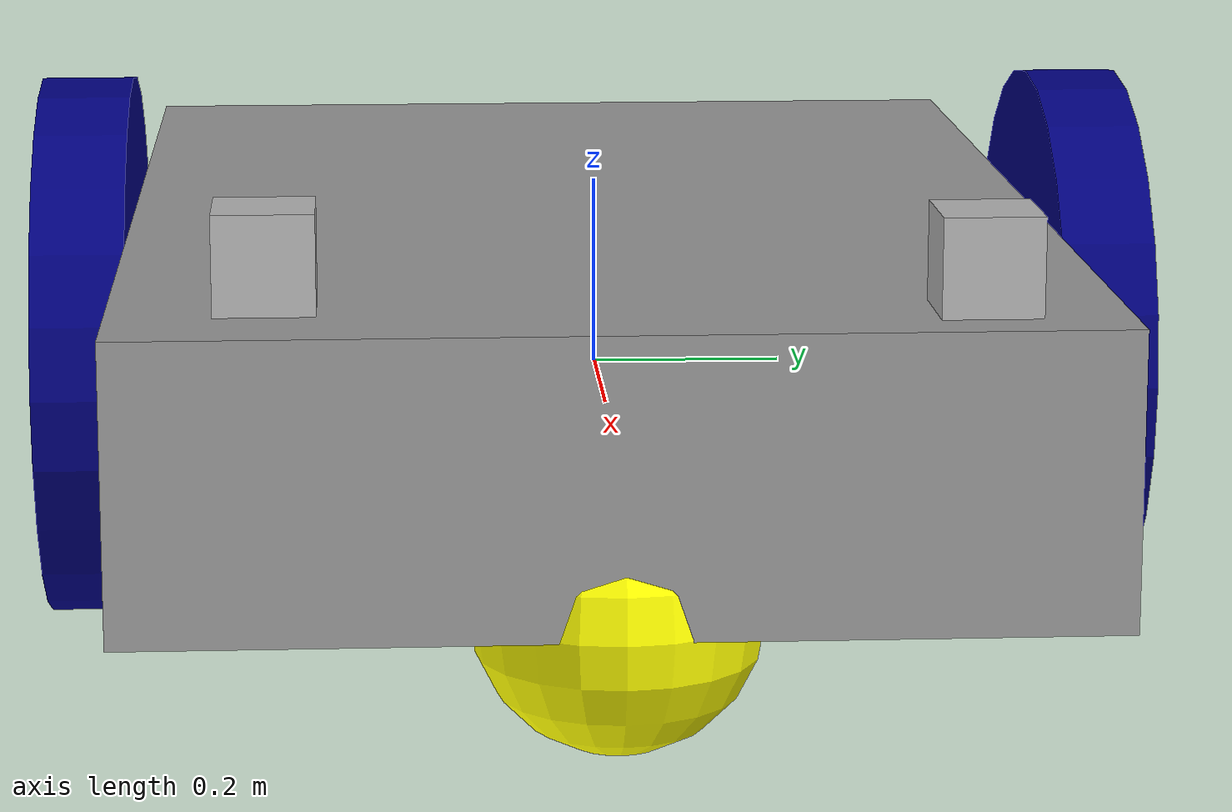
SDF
<?xml version='1.0'?>
<sdf version='1.7'>
  <model name='MYRobo'>
    <link name='link_3'>
      <inertial>
        <mass>0.442122</mass>
        <inertia>
          <ixx>0.0402302</ixx>
          <ixy>0</ixy>
          <ixz>0</ixz>
          <iyy>0.0817796</iyy>
          <iyz>0</iyz>
          <izz>0.115236</izz>
        </inertia>
        <pose>0 0 0 0 -0 0</pose>
      </inertial>
      <pose>-0.181573 -0.002286 -0.00731 0 -0 0</pose>
      <gravity>1</gravity>
      <self_collide>0</self_collide>
      <kinematic>0</kinematic>
      <enable_wind>0</enable_wind>
      <visual name='visual'>
        <pose>0 0 0 0 -0 0</pose>
        <geometry>
          <box>
            <size>1.45867 1 0.303184</size>
          </box>
        </geometry>
        <material>
          <lighting>1</lighting>
          <script>
            <uri>file://media/materials/scripts/gazebo.material</uri>
            <name>Gazebo/Grey</name>
          </script>
          <shader type='pixel'>
            <normal_map>__default__</normal_map>
          </shader>
          <ambient>0.3 0.3 0.3 1</ambient>
          <diffuse>0.7 0.7 0.7 1</diffuse>
          <specular>0.01 0.01 0.01 1</specular>
          <emissive>0 0 0 1</emissive>
        </material>
        <transparency>0</transparency>
        <cast_shadows>1</cast_shadows>
      </visual>
      <collision name='collision'>
        <laser_retro>0</laser_retro>
        <max_contacts>10</max_contacts>
        <pose>0 0 0 0 -0 0</pose>
        <geometry>
          <box>
            <size>1.45867 1 0.303184</size>
          </box>
        </geometry>
        <surface>
          <friction>
            <ode>
              <mu>1</mu>
              <mu2>1</mu2>
              <fdir1>0 0 0</fdir1>
              <slip1>0</slip1>
              <slip2>0</slip2>
            </ode>
            <torsional>
              <coefficient>1</coefficient>
              <patch_radius>0</patch_radius>
              <surface_radius>0</surface_radius>
              <use_patch_radius>1</use_patch_radius>
              <ode>
                <slip>0</slip>
              </ode>
            </torsional>
          </friction>
          <bounce>
            <restitution_coefficient>0</restitution_coefficient>
            <threshold>1e+06</threshold>
          </bounce>
          <contact>
            <collide_without_contact>0</collide_without_contact>
            <collide_without_contact_bitmask>1</collide_without_contact_bitmask>
            <collide_bitmask>1</collide_bitmask>
            <ode>
              <soft_cfm>0</soft_cfm>
              <soft_erp>0.2</soft_erp>
              <kp>1e+13</kp>
              <kd>1</kd>
              <max_vel>0.01</max_vel>
              <min_depth>0</min_depth>
            </ode>
            <bullet>
              <split_impulse>1</split_impulse>
              <split_impulse_penetration_threshold>-0.01</split_impulse_penetration_threshold>
              <soft_cfm>0</soft_cfm>
              <soft_erp>0.2</soft_erp>
              <kp>1e+13</kp>
              <kd>1</kd>
            </bullet>
          </contact>
        </surface>
      </collision>
    </link>
    <link name='link_4'>
      <inertial>
        <mass>1</mass>
        <inertia>
          <ixx>0.145833</ixx>
          <ixy>0</ixy>
          <ixz>0</ixz>
          <iyy>0.145833</iyy>
          <iyz>0</iyz>
          <izz>0.125</izz>
        </inertia>
        <pose>0 0 0 0 -0 0</pose>
      </inertial>
      <pose>-0.181573 -0.552315 -0.012462 1.5707 -0 0</pose>
      <gravity>1</gravity>
      <self_collide>0</self_collide>
      <kinematic>0</kinematic>
      <enable_wind>1</enable_wind>
      <visual name='visual'>
        <pose>0 0 0 0 -0 0</pose>
        <geometry>
          <cylinder>
            <radius>0.3</radius>
            <length>0.1</length>
          </cylinder>
        </geometry>
        <material>
          <lighting>1</lighting>
          <script>
            <uri>file://media/materials/scripts/gazebo.material</uri>
            <name>Gazebo/Grey</name>
          </script>
          <shader type='pixel'>
            <normal_map>__default__</normal_map>
          </shader>
          <ambient>0 0 0.498 1</ambient>
          <diffuse>0.7 0.7 0.7 1</diffuse>
          <specular>0.01 0.01 0.01 1</specular>
          <emissive>0 0 0 1</emissive>
        </material>
        <transparency>0</transparency>
        <cast_shadows>1</cast_shadows>
      </visual>
      <collision name='collision'>
        <laser_retro>0</laser_retro>
        <max_contacts>10</max_contacts>
        <pose>0 0 0 0 -0 0</pose>
        <geometry>
          <cylinder>
            <radius>0.3</radius>
            <length>0.1</length>
          </cylinder>
        </geometry>
        <surface>
          <friction>
            <ode>
              <mu>1</mu>
              <mu2>1</mu2>
              <fdir1>0 0 0</fdir1>
              <slip1>0</slip1>
              <slip2>0</slip2>
            </ode>
            <torsional>
              <coefficient>1</coefficient>
              <patch_radius>0</patch_radius>
              <surface_radius>0</surface_radius>
              <use_patch_radius>1</use_patch_radius>
              <ode>
                <slip>0</slip>
              </ode>
            </torsional>
          </friction>
          <bounce>
            <restitution_coefficient>0</restitution_coefficient>
            <threshold>1e+06</threshold>
          </bounce>
          <contact>
            <collide_without_contact>0</collide_without_contact>
            <collide_without_contact_bitmask>1</collide_without_contact_bitmask>
            <collide_bitmask>1</collide_bitmask>
            <ode>
              <soft_cfm>0</soft_cfm>
              <soft_erp>0.2</soft_erp>
              <kp>1e+13</kp>
              <kd>1</kd>
              <max_vel>0.01</max_vel>
              <min_depth>0</min_depth>
            </ode>
            <bullet>
              <split_impulse>1</split_impulse>
              <split_impulse_penetration_threshold>-0.01</split_impulse_penetration_threshold>
              <soft_cfm>0</soft_cfm>
              <soft_erp>0.2</soft_erp>
              <kp>1e+13</kp>
              <kd>1</kd>
            </bullet>
          </contact>
        </surface>
      </collision>
    </link>
    <link name='link_4_clone'>
      <inertial>
        <mass>1</mass>
        <inertia>
          <ixx>0.145833</ixx>
          <ixy>0</ixy>
          <ixz>0</ixz>
          <iyy>0.145833</iyy>
          <iyz>0</iyz>
          <izz>0.125</izz>
        </inertia>
        <pose>0 0 0 0 -0 0</pose>
      </inertial>
      <pose>-0.181573 0.547743 -0.012462 1.5707 -0 0</pose>
      <gravity>1</gravity>
      <self_collide>0</self_collide>
      <kinematic>0</kinematic>
      <enable_wind>1</enable_wind>
      <visual name='visual'>
        <pose>0 0 0 0 -0 0</pose>
        <geometry>
          <cylinder>
            <radius>0.3</radius>
            <length>0.1</length>
          </cylinder>
        </geometry>
        <material>
          <lighting>1</lighting>
          <script>
            <uri>file://media/materials/scripts/gazebo.material</uri>
            <name>Gazebo/Grey</name>
          </script>
          <shader type='pixel'>
            <normal_map>__default__</normal_map>
          </shader>
          <ambient>0 0 0.498 1</ambient>
          <diffuse>0.7 0.7 0.7 1</diffuse>
          <specular>0.01 0.01 0.01 1</specular>
          <emissive>0 0 0 1</emissive>
        </material>
        <transparency>0</transparency>
        <cast_shadows>1</cast_shadows>
      </visual>
      <collision name='collision'>
        <laser_retro>0</laser_retro>
        <max_contacts>10</max_contacts>
        <pose>0 0 0 0 -0 0</pose>
        <geometry>
          <cylinder>
            <radius>0.3</radius>
            <length>0.1</length>
          </cylinder>
        </geometry>
        <surface>
          <friction>
            <ode>
              <mu>1</mu>
              <mu2>1</mu2>
              <fdir1>0 0 0</fdir1>
              <slip1>0</slip1>
              <slip2>0</slip2>
            </ode>
            <torsional>
              <coefficient>1</coefficient>
              <patch_radius>0</patch_radius>
              <surface_radius>0</surface_radius>
              <use_patch_radius>1</use_patch_radius>
              <ode>
                <slip>0</slip>
              </ode>
            </torsional>
          </friction>
          <bounce>
            <restitution_coefficient>0</restitution_coefficient>
            <threshold>1e+06</threshold>
          </bounce>
          <contact>
            <collide_without_contact>0</collide_without_contact>
            <collide_without_contact_bitmask>1</collide_without_contact_bitmask>
            <collide_bitmask>1</collide_bitmask>
            <ode>
              <soft_cfm>0</soft_cfm>
              <soft_erp>0.2</soft_erp>
              <kp>1e+13</kp>
              <kd>1</kd>
              <max_vel>0.01</max_vel>
              <min_depth>0</min_depth>
            </ode>
            <bullet>
              <split_impulse>1</split_impulse>
              <split_impulse_penetration_threshold>-0.01</split_impulse_penetration_threshold>
              <soft_cfm>0</soft_cfm>
              <soft_erp>0.2</soft_erp>
              <kp>1e+13</kp>
              <kd>1</kd>
            </bullet>
          </contact>
        </surface>
      </collision>
    </link>
    <link name='link_5'>
      <inertial>
        <mass>1</mass>
        <inertia>
          <ixx>0.1</ixx>
          <ixy>0</ixy>
          <ixz>0</ixz>
          <iyy>0.1</iyy>
          <iyz>0</iyz>
          <izz>0.1</izz>
        </inertia>
        <pose>0 0 0 0 -0 0</pose>
      </inertial>
      <pose>0.414558 -0.000809 -0.157774 0 -0 0</pose>
      <gravity>1</gravity>
      <self_collide>0</self_collide>
      <kinematic>0</kinematic>
      <enable_wind>0</enable_wind>
      <visual name='visual'>
        <pose>0 0 0 0 -0 0</pose>
        <geometry>
          <sphere>
            <radius>0.15</radius>
          </sphere>
        </geometry>
        <material>
          <lighting>1</lighting>
          <script>
            <uri>file://media/materials/scripts/gazebo.material</uri>
            <name>Gazebo/Grey</name>
          </script>
          <shader type='pixel'>
            <normal_map>__default__</normal_map>
          </shader>
          <ambient>1 1 0 1</ambient>
          <diffuse>0.7 0.7 0.7 1</diffuse>
          <specular>0.01 0.01 0.01 1</specular>
          <emissive>0 0 0 1</emissive>
        </material>
        <transparency>0</transparency>
        <cast_shadows>1</cast_shadows>
      </visual>
      <collision name='collision'>
        <laser_retro>0</laser_retro>
        <max_contacts>10</max_contacts>
        <pose>0 0 0 0 -0 0</pose>
        <geometry>
          <sphere>
            <radius>0.15</radius>
          </sphere>
        </geometry>
        <surface>
          <friction>
            <ode>
              <mu>1</mu>
              <mu2>1</mu2>
              <fdir1>0 0 0</fdir1>
              <slip1>0</slip1>
              <slip2>0</slip2>
            </ode>
            <torsional>
              <coefficient>1</coefficient>
              <patch_radius>0</patch_radius>
              <surface_radius>0</surface_radius>
              <use_patch_radius>1</use_patch_radius>
              <ode>
                <slip>0</slip>
              </ode>
            </torsional>
          </friction>
          <bounce>
            <restitution_coefficient>0</restitution_coefficient>
            <threshold>1e+06</threshold>
          </bounce>
          <contact>
            <collide_without_contact>0</collide_without_contact>
            <collide_without_contact_bitmask>1</collide_without_contact_bitmask>
            <collide_bitmask>1</collide_bitmask>
            <ode>
              <soft_cfm>0</soft_cfm>
              <soft_erp>0.2</soft_erp>
              <kp>1e+13</kp>
              <kd>1</kd>
              <max_vel>0.01</max_vel>
              <min_depth>0</min_depth>
            </ode>
            <bullet>
              <split_impulse>1</split_impulse>
              <split_impulse_penetration_threshold>-0.01</split_impulse_penetration_threshold>
              <soft_cfm>0</soft_cfm>
              <soft_erp>0.2</soft_erp>
              <kp>1e+13</kp>
              <kd>1</kd>
            </bullet>
          </contact>
        </surface>
      </collision>
    </link>
    <link name='link_5_clone'>
      <inertial>
        <mass>1</mass>
        <inertia>
          <ixx>0.1</ixx>
          <ixy>0</ixy>
          <ixz>0</ixz>
          <iyy>0.1</iyy>
          <iyz>0</iyz>
          <izz>0.1</izz>
        </inertia>
        <pose>0 0 0 0 -0 0</pose>
      </inertial>
      <pose>-0.751134 -0.002286 -0.157774 0 -0 0</pose>
      <gravity>1</gravity>
      <self_collide>0</self_collide>
      <kinematic>0</kinematic>
      <enable_wind>0</enable_wind>
      <visual name='visual'>
        <pose>0 0 0 0 -0 0</pose>
        <geometry>
          <sphere>
            <radius>0.15</radius>
          </sphere>
        </geometry>
        <material>
          <lighting>1</lighting>
          <script>
            <uri>file://media/materials/scripts/gazebo.material</uri>
            <name>Gazebo/Grey</name>
          </script>
          <shader type='pixel'>
            <normal_map>__default__</normal_map>
          </shader>
          <ambient>1 1 0 1</ambient>
          <diffuse>0.7 0.7 0.7 1</diffuse>
          <specular>0.01 0.01 0.01 1</specular>
          <emissive>0 0 0 1</emissive>
        </material>
        <transparency>0</transparency>
        <cast_shadows>1</cast_shadows>
      </visual>
      <collision name='collision'>
        <laser_retro>0</laser_retro>
        <max_contacts>10</max_contacts>
        <pose>0 0 0 0 -0 0</pose>
        <geometry>
          <sphere>
            <radius>0.15</radius>
          </sphere>
        </geometry>
        <surface>
          <friction>
            <ode>
              <mu>1</mu>
              <mu2>1</mu2>
              <fdir1>0 0 0</fdir1>
              <slip1>0</slip1>
              <slip2>0</slip2>
            </ode>
            <torsional>
              <coefficient>1</coefficient>
              <patch_radius>0</patch_radius>
              <surface_radius>0</surface_radius>
              <use_patch_radius>1</use_patch_radius>
              <ode>
                <slip>0</slip>
              </ode>
            </torsional>
          </friction>
          <bounce>
            <restitution_coefficient>0</restitution_coefficient>
            <threshold>1e+06</threshold>
          </bounce>
          <contact>
            <collide_without_contact>0</collide_without_contact>
            <collide_without_contact_bitmask>1</collide_without_contact_bitmask>
            <collide_bitmask>1</collide_bitmask>
            <ode>
              <soft_cfm>0</soft_cfm>
              <soft_erp>0.2</soft_erp>
              <kp>1e+13</kp>
              <kd>1</kd>
              <max_vel>0.01</max_vel>
              <min_depth>0</min_depth>
            </ode>
            <bullet>
              <split_impulse>1</split_impulse>
              <split_impulse_penetration_threshold>-0.01</split_impulse_penetration_threshold>
              <soft_cfm>0</soft_cfm>
              <soft_erp>0.2</soft_erp>
              <kp>1e+13</kp>
              <kd>1</kd>
            </bullet>
          </contact>
        </surface>
      </collision>
    </link>
    <model name='camera'>
      <pose>0.431324 -0.345601 0.201982 0 -0 0</pose>
      <link name='link'>
        <inertial>
          <mass>0.1</mass>
          <inertia>
            <ixx>0.000166667</ixx>
            <iyy>0.000166667</iyy>
            <izz>0.000166667</izz>
            <ixy>0</ixy>
            <ixz>0</ixz>
            <iyz>0</iyz>
          </inertia>
        </inertial>
        <collision name='collision'>
          <geometry>
            <box>
              <size>0.1 0.1 0.1</size>
            </box>
          </geometry>
        </collision>
        <visual name='visual'>
          <geometry>
            <box>
              <size>0.1 0.1 0.1</size>
            </box>
          </geometry>
        </visual>
        <sensor name='camera' type='camera'>
          <camera>
            <horizontal_fov>1.047</horizontal_fov>
            <image>
              <width>320</width>
              <height>240</height>
            </image>
            <clip>
              <near>0.1</near>
              <far>100</far>
            </clip>
          </camera>
          <always_on>1</always_on>
          <update_rate>30</update_rate>
          <visualize>1</visualize>
        </sensor>
      </link>
    </model>
    <model name='depth_camera'>
      <link name='link'>
        <pose>0 0 0.05 0 -0 0</pose>
        <inertial>
          <mass>0.1</mass>
          <inertia>
            <ixx>0.000166667</ixx>
            <iyy>0.000166667</iyy>
            <izz>0.000166667</izz>
            <ixy>0</ixy>
            <ixz>0</ixz>
            <iyz>0</iyz>
          </inertia>
        </inertial>
        <collision name='collision'>
          <geometry>
            <box>
              <size>0.1 0.1 0.1</size>
            </box>
          </geometry>
        </collision>
        <visual name='visual'>
          <geometry>
            <box>
              <size>0.1 0.1 0.1</size>
            </box>
          </geometry>
        </visual>
        <sensor name='camera' type='depth'>
          <camera>
            <horizontal_fov>1.047</horizontal_fov>
            <image>
              <width>320</width>
              <height>240</height>
            </image>
            <clip>
              <near>0.1</near>
              <far>100</far>
            </clip>
          </camera>
          <always_on>1</always_on>
          <update_rate>30</update_rate>
          <visualize>1</visualize>
        </sensor>
      </link>
      <pose>0.449972 0.355556 0.145801 0 -0 0</pose>
    </model>
    <joint name='link_3_JOINT_10' type='fixed'>
      <parent>link_3</parent>
      <child>camera::link</child>
      <pose>0 0 0 0 -0 0</pose>
      <physics>
        <ode>
          <limit>
            <cfm>0</cfm>
            <erp>0.2</erp>
          </limit>
          <suspension>
            <cfm>0</cfm>
            <erp>0.2</erp>
          </suspension>
        </ode>
      </physics>
    </joint>
    <joint name='link_3_JOINT_11' type='fixed'>
      <parent>link_3</parent>
      <child>depth_camera::link</child>
      <pose>0 0 0 0 -0 0</pose>
      <physics>
        <ode>
          <limit>
            <cfm>0</cfm>
            <erp>0.2</erp>
          </limit>
          <suspension>
            <cfm>0</cfm>
            <erp>0.2</erp>
          </suspension>
        </ode>
      </physics>
    </joint>
    <joint name='link_3_JOINT_6' type='revolute'>
      <parent>link_3</parent>
      <child>link_4_clone</child>
      <pose>0 0 0 0 -0 0</pose>
      <axis>
        <xyz>0 0 1</xyz>
        <limit>
          <lower>-1.79769e+308</lower>
          <upper>1.79769e+308</upper>
          <effort>-1</effort>
          <velocity>-1</velocity>
        </limit>
        <dynamics>
          <spring_reference>0</spring_reference>
          <spring_stiffness>0</spring_stiffness>
          <damping>0</damping>
        </dynamics>
      </axis>
      <physics>
        <ode>
          <limit>
            <cfm>0</cfm>
            <erp>0.2</erp>
          </limit>
          <suspension>
            <cfm>0</cfm>
            <erp>0.2</erp>
          </suspension>
        </ode>
      </physics>
    </joint>
    <joint name='link_3_JOINT_7' type='revolute'>
      <parent>link_3</parent>
      <child>link_4</child>
      <pose>0 0 0 0 -0 0</pose>
      <axis>
        <xyz>0 0 1</xyz>
        <limit>
          <lower>-1.79769e+308</lower>
          <upper>1.79769e+308</upper>
          <effort>-1</effort>
          <velocity>-1</velocity>
        </limit>
        <dynamics>
          <spring_reference>0</spring_reference>
          <spring_stiffness>0</spring_stiffness>
          <damping>0</damping>
          <friction>0</friction>
        </dynamics>
      </axis>
      <physics>
        <ode>
          <limit>
            <cfm>0</cfm>
            <erp>0.2</erp>
          </limit>
          <suspension>
            <cfm>0</cfm>
            <erp>0.2</erp>
          </suspension>
        </ode>
      </physics>
    </joint>
    <joint name='link_3_JOINT_8' type='ball'>
      <parent>link_3</parent>
      <child>link_5</child>
      <pose>0 0 0 0 -0 0</pose>
      <physics>
        <ode>
          <limit>
            <cfm>0</cfm>
            <erp>0.2</erp>
          </limit>
          <suspension>
            <cfm>0</cfm>
            <erp>0.2</erp>
          </suspension>
        </ode>
      </physics>
    </joint>
    <joint name='link_3_JOINT_9' type='ball'>
      <parent>link_3</parent>
      <child>link_5_clone</child>
      <pose>0 0 0 0 -0 0</pose>
      <physics>
        <ode>
          <limit>
            <cfm>0</cfm>
            <erp>0.2</erp>
          </limit>
          <suspension>
            <cfm>0</cfm>
            <erp>0.2</erp>
          </suspension>
        </ode>
      </physics>
    </joint>
    <static>0</static>
    <allow_auto_disable>1</allow_auto_disable>
  </model>
</sdf>
